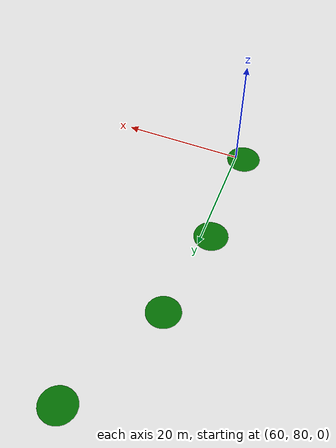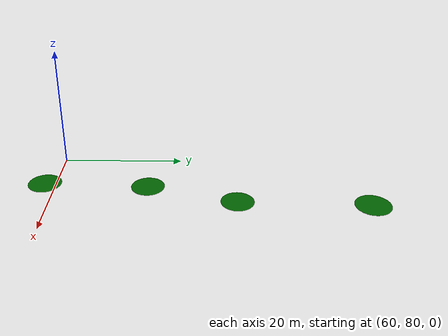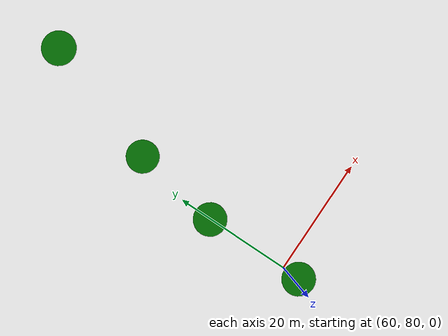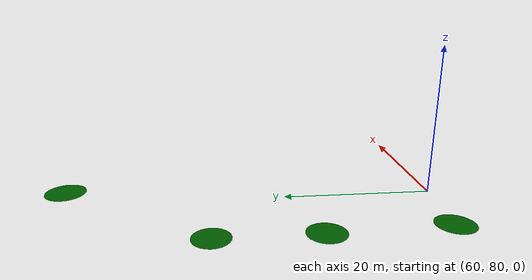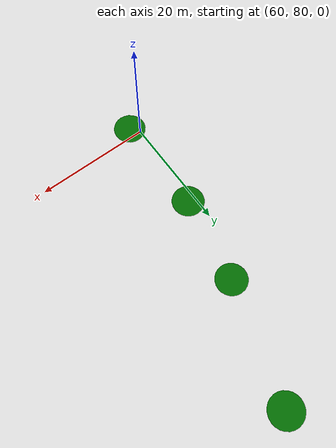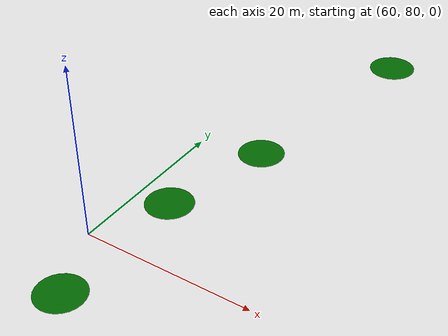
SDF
<sdf version="1.6">
 <world name="default">
  <model name="ground_plane">
   <static>1</static>
   <link name="link">
    <collision name="collision">
     <geometry><plane><normal>0 0 1</normal><size>100 100</size></plane></geometry>
     <surface><friction><ode><mu>100</mu><mu2>50</mu2></ode></friction></surface>
    </collision>
    <visual name="visual">
     <cast_shadows>0</cast_shadows>
     <geometry><plane><normal>0 0 1</normal><size>100 100</size></plane></geometry>
     <material>
      <script><uri>file://media/materials/scripts/gazebo.material</uri><name>Gazebo/Grey</name></script>
     </material>
    </visual>
   </link>
  </model>
  <model name="M16APM_point_clone_0_clone_clone_clone_clone_clone_clone">
   <link name="link">
    <inertial>
     <mass>1</mass>
     <inertia><ixx>0.145833</ixx><ixy>0</ixy><ixz>0</ixz><iyy>0.145833</iyy><iyz>0</iyz><izz>0.125</izz></inertia>
    </inertial>
    <gravity>0</gravity>
    <visual name="ModelPreview_1::link::visual_1">
     <geometry><cylinder><radius>3</radius><length>0.01</length></cylinder></geometry>
     <material>
      <script><name>Gazebo/Grey</name><uri>file://media/materials/scripts/gazebo.material</uri></script>
      <ambient>0 0.4 0 0</ambient>
      <diffuse>0 0.4 0 0</diffuse>
      <specular>0 0.41 0 0</specular>
      <emissive>0 0.4 0 0</emissive>
      <shader type="vertex"><normal_map>__default__</normal_map></shader>
     </material>
    </visual>
    <visual name="visual">
     <geometry><cylinder><radius>3</radius><length>0.005</length></cylinder></geometry>
     <material>
      <script><name>Gazebo/Grey</name><uri>file://media/materials/scripts/gazebo.material</uri></script>
      <ambient>0 0.4 0 0</ambient>
      <diffuse>0 0.4 0 0</diffuse>
      <specular>0 0.41 0 0</specular>
      <emissive>0 0.4 0 0</emissive>
      <shader type="vertex"><normal_map>__default__</normal_map></shader>
     </material>
    </visual>
   </link>
   <static>0</static>
   <pose>59.5 75.5 -5.0091 0 -0 0</pose>
  </model>
  <model name="M16APM_point_clone_0_clone_clone_clone_clone_clone_clone_clone_7">
   <link name="link">
    <inertial>
     <mass>1</mass>
     <inertia><ixx>0.145833</ixx><ixy>0</ixy><ixz>0</ixz><iyy>0.145833</iyy><iyz>0</iyz><izz>0.125</izz></inertia>
    </inertial>
    <gravity>0</gravity>
    <visual name="ModelPreview_1::link::visual_1">
     <geometry><cylinder><radius>3</radius><length>0.01</length></cylinder></geometry>
     <material>
      <script><name>Gazebo/Grey</name><uri>file://media/materials/scripts/gazebo.material</uri></script>
      <ambient>0 0.4 0 0</ambient>
      <diffuse>0 0.4 0 0</diffuse>
      <specular>0 0.41 0 0</specular>
      <emissive>0 0.4 0 0</emissive>
      <shader type="vertex"><normal_map>__default__</normal_map></shader>
     </material>
    </visual>
    <visual name="visual">
     <geometry><cylinder><radius>3</radius><length>0.005</length></cylinder></geometry>
     <material>
      <script><name>Gazebo/Grey</name><uri>file://media/materials/scripts/gazebo.material</uri></script>
      <ambient>0 0.4 0 0</ambient>
      <diffuse>0 0.4 0 0</diffuse>
      <specular>0 0.41 0 0</specular>
      <emissive>0 0.4 0 0</emissive>
      <shader type="vertex"><normal_map>__default__</normal_map></shader>
     </material>
    </visual>
   </link>
   <static>0</static>
   <pose>62 110 -6.8644 0 -0 0</pose>
  </model>
  <model name="M16APM_point_clone_0_clone_clone_clone_clone_clone_clone_clone_9">
   <link name="link">
    <inertial>
     <mass>1</mass>
     <inertia><ixx>0.145833</ixx><ixy>0</ixy><ixz>0</ixz><iyy>0.145833</iyy><iyz>0</iyz><izz>0.125</izz></inertia>
    </inertial>
    <gravity>0</gravity>
    <visual name="ModelPreview_1::link::visual_1">
     <geometry><cylinder><radius>3</radius><length>0.01</length></cylinder></geometry>
     <material>
      <script><name>Gazebo/Grey</name><uri>file://media/materials/scripts/gazebo.material</uri></script>
      <ambient>0 0.4 0 0</ambient>
      <diffuse>0 0.4 0 0</diffuse>
      <specular>0 0.41 0 0</specular>
      <emissive>0 0.4 0 0</emissive>
      <shader type="vertex"><normal_map>__default__</normal_map></shader>
     </material>
    </visual>
    <visual name="visual">
     <geometry><cylinder><radius>3</radius><length>0.005</length></cylinder></geometry>
     <material>
      <script><name>Gazebo/Grey</name><uri>file://media/materials/scripts/gazebo.material</uri></script>
      <ambient>0 0.4 0 0</ambient>
      <diffuse>0 0.4 0 0</diffuse>
      <specular>0 0.41 0 0</specular>
      <emissive>0 0.4 0 0</emissive>
      <shader type="vertex"><normal_map>__default__</normal_map></shader>
     </material>
    </visual>
   </link>
   <static>0</static>
   <pose>59.5 94 -5.4643 0 -0 0</pose>
  </model>
  <model name="M16APM_point_clone_0_clone_clone_clone_clone_clone_clone_clone_12">
   <link name="link">
    <inertial>
     <mass>1</mass>
     <inertia><ixx>0.145833</ixx><ixy>0</ixy><ixz>0</ixz><iyy>0.145833</iyy><iyz>0</iyz><izz>0.125</izz></inertia>
    </inertial>
    <gravity>0</gravity>
    <visual name="ModelPreview_1::link::visual_1">
     <geometry><cylinder><radius>3</radius><length>0.01</length></cylinder></geometry>
     <material>
      <script><name>Gazebo/Grey</name><uri>file://media/materials/scripts/gazebo.material</uri></script>
      <ambient>0 0.4 0 0</ambient>
      <diffuse>0 0.4 0 0</diffuse>
      <specular>0 0.41 0 0</specular>
      <emissive>0 0.4 0 0</emissive>
      <shader type="vertex"><normal_map>__default__</normal_map></shader>
     </material>
    </visual>
    <visual name="visual">
     <geometry><cylinder><radius>3</radius><length>0.005</length></cylinder></geometry>
     <material>
      <script><name>Gazebo/Grey</name><uri>file://media/materials/scripts/gazebo.material</uri></script>
      <ambient>0 0.4 0 0</ambient>
      <diffuse>0 0.4 0 0</diffuse>
      <specular>0 0.41 0 0</specular>
      <emissive>0 0.4 0 0</emissive>
      <shader type="vertex"><normal_map>__default__</normal_map></shader>
     </material>
    </visual>
   </link>
   <static>0</static>
   <pose>69.5 131.5 -2.3544 0 -0 0</pose>
  </model>
 </world>
</sdf>
